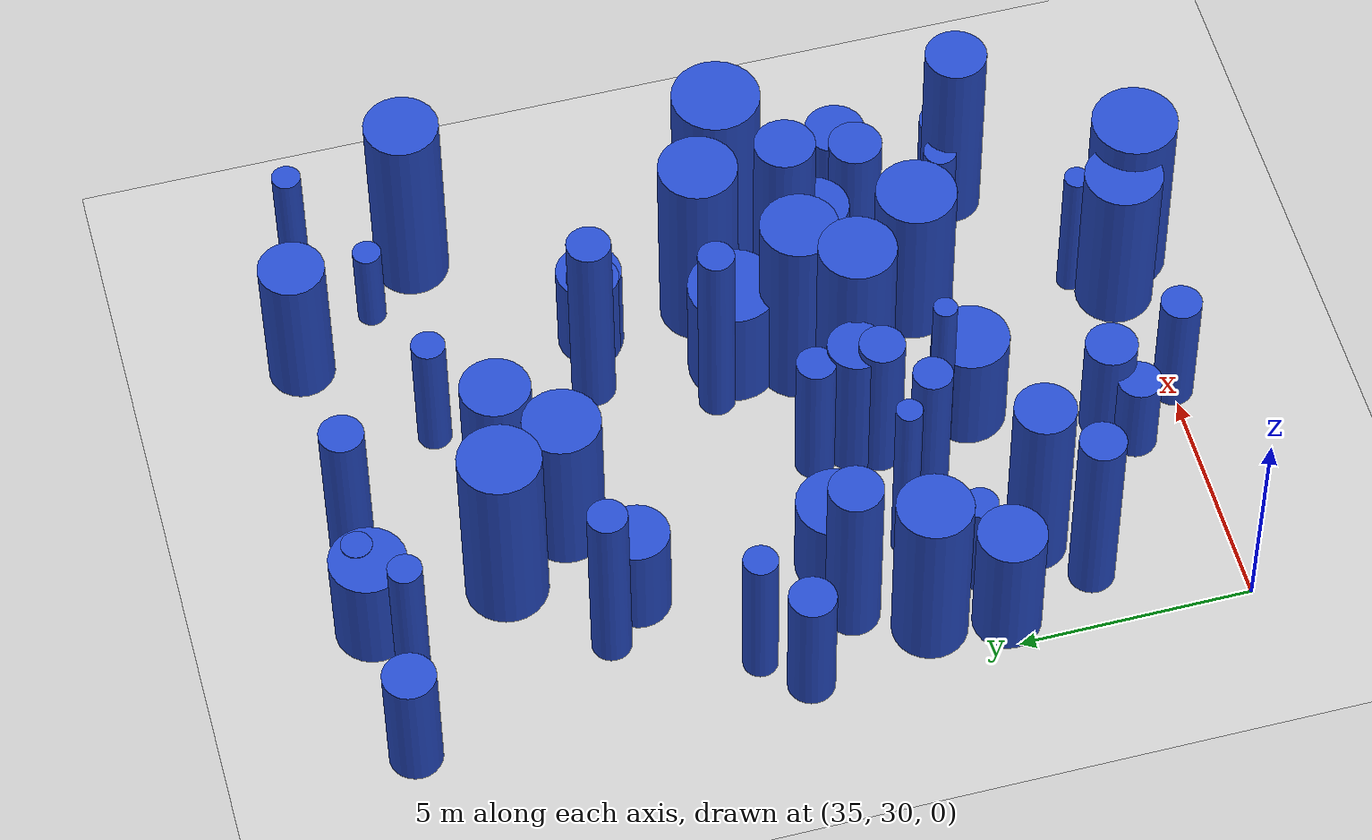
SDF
<sdf version="1.6">
 <world name="default">
  <model name="ground_plane">
   <static>1</static>
   <link name="link">
    <collision name="collision">
     <geometry><plane><normal>0 0 1</normal><size>100 100</size></plane></geometry>
     <surface><friction><ode><mu>100</mu><mu2>50</mu2></ode></friction></surface>
    </collision>
    <visual name="visual">
     <cast_shadows>0</cast_shadows>
     <geometry><plane><normal>0 0 1</normal><size>100 100</size></plane></geometry>
     <material>
      <script><uri>file://media/materials/scripts/gazebo.material</uri><name>Gazebo/Grey</name></script>
     </material>
    </visual>
   </link>
  </model>
  <model name="5">
   <static>0</static>
   <link name="link">
    <inertial>
     <mass>2</mass>
     <inertia><ixx>1.28365</ixx><ixy>0</ixy><ixz>0</ixz><iyy>1.28365</iyy><iyz>0</iyz><izz>0.136114</izz></inertia>
    </inertial>
    <collision name="collision">
     <geometry><cylinder><length>2.70066</length><radius>0.368937</radius></cylinder></geometry>
     <surface><contact><collide_without_contact>1</collide_without_contact></contact></surface>
    </collision>
    <visual name="visual">
     <geometry><cylinder><length>2.70066</length><radius>0.368937</radius></cylinder></geometry>
     <material>
      <script><uri>file://media/materials/scripts/gazebo.material</uri><name>Gazebo/Blue</name></script>
     </material>
    </visual>
    <gravity>0</gravity>
   </link>
   <pose>44.2189 36.454 1.35033 0 -0 0</pose>
  </model>
  <model name="10">
   <static>0</static>
   <link name="link">
    <inertial>
     <mass>2</mass>
     <inertia><ixx>1.16641</ixx><ixy>0</ixy><ixz>0</ixz><iyy>1.16641</iyy><iyz>0</iyz><izz>0.142317</izz></inertia>
    </inertial>
    <collision name="collision">
     <geometry><cylinder><length>2.56349</length><radius>0.37725</radius></cylinder></geometry>
     <surface><contact><collide_without_contact>1</collide_without_contact></contact></surface>
    </collision>
    <visual name="visual">
     <geometry><cylinder><length>2.56349</length><radius>0.37725</radius></cylinder></geometry>
     <material>
      <script><uri>file://media/materials/scripts/gazebo.material</uri><name>Gazebo/Blue</name></script>
     </material>
    </visual>
    <gravity>0</gravity>
   </link>
   <pose>36.8922 35.3674 1.28175 0 -0 0</pose>
  </model>
  <model name="12">
   <static>0</static>
   <link name="link">
    <inertial>
     <mass>2</mass>
     <inertia><ixx>2.99946</ixx><ixy>0</ixy><ixz>0</ixz><iyy>2.99946</iyy><iyz>0</iyz><izz>0.69692</izz></inertia>
    </inertial>
    <collision name="collision">
     <geometry><cylinder><length>3.98823</length><radius>0.834817</radius></cylinder></geometry>
     <surface><contact><collide_without_contact>1</collide_without_contact></contact></surface>
    </collision>
    <visual name="visual">
     <geometry><cylinder><length>3.98823</length><radius>0.834817</radius></cylinder></geometry>
     <material>
      <script><uri>file://media/materials/scripts/gazebo.material</uri><name>Gazebo/Blue</name></script>
     </material>
    </visual>
    <gravity>0</gravity>
   </link>
   <pose>43.2297 30.4 1.99412 0 -0 0</pose>
  </model>
  <model name="14">
   <static>0</static>
   <link name="link">
    <inertial>
     <mass>2</mass>
     <inertia>
      <ixx>2.88721</ixx>
      <ixy>0</ixy>
      <ixz>0</ixz>
      <iyy>2.88721</iyy>
      <iyz>0</iyz>
      <izz>0.0931527</izz>
     </inertia>
    </inertial>
    <collision name="collision">
     <geometry><cylinder><length>4.12841</length><radius>0.305209</radius></cylinder></geometry>
     <surface><contact><collide_without_contact>1</collide_without_contact></contact></surface>
    </collision>
    <visual name="visual">
     <geometry><cylinder><length>4.12841</length><radius>0.305209</radius></cylinder></geometry>
     <material>
      <script><uri>file://media/materials/scripts/gazebo.material</uri><name>Gazebo/Blue</name></script>
     </material>
    </visual>
    <gravity>0</gravity>
   </link>
   <pose>47.5968 47.3639 2.06421 0 -0 0</pose>
  </model>
  <model name="19">
   <static>0</static>
   <link name="link">
    <inertial>
     <mass>2</mass>
     <inertia><ixx>1.64625</ixx><ixy>0</ixy><ixz>0</ixz><iyy>1.64625</iyy><iyz>0</iyz><izz>0.417403</izz></inertia>
    </inertial>
    <collision name="collision">
     <geometry><cylinder><length>2.93689</length><radius>0.646067</radius></cylinder></geometry>
     <surface><contact><collide_without_contact>1</collide_without_contact></contact></surface>
    </collision>
    <visual name="visual">
     <geometry><cylinder><length>2.93689</length><radius>0.646067</radius></cylinder></geometry>
     <material>
      <script><uri>file://media/materials/scripts/gazebo.material</uri><name>Gazebo/Blue</name></script>
     </material>
    </visual>
    <gravity>0</gravity>
   </link>
   <pose>46.8519 35.6651 1.46844 0 -0 0</pose>
  </model>
  <model name="31">
   <static>0</static>
   <link name="link">
    <inertial>
     <mass>2</mass>
     <inertia><ixx>2.45644</ixx><ixy>0</ixy><ixz>0</ixz><iyy>2.45644</iyy><iyz>0</iyz><izz>0.235516</izz></inertia>
    </inertial>
    <collision name="collision">
     <geometry><cylinder><length>3.74595</length><radius>0.4853</radius></cylinder></geometry>
     <surface><contact><collide_without_contact>1</collide_without_contact></contact></surface>
    </collision>
    <visual name="visual">
     <geometry><cylinder><length>3.74595</length><radius>0.4853</radius></cylinder></geometry>
     <material>
      <script><uri>file://media/materials/scripts/gazebo.material</uri><name>Gazebo/Blue</name></script>
     </material>
    </visual>
    <gravity>0</gravity>
   </link>
   <pose>40.4344 36.4539 1.87297 0 -0 0</pose>
  </model>
  <model name="39">
   <static>0</static>
   <link name="link">
    <inertial>
     <mass>2</mass>
     <inertia><ixx>3.67581</ixx><ixy>0</ixy><ixz>0</ixz><iyy>3.67581</iyy><iyz>0</iyz><izz>0.237626</izz></inertia>
    </inertial>
    <collision name="collision">
     <geometry><cylinder><length>4.61974</length><radius>0.487469</radius></cylinder></geometry>
     <surface><contact><collide_without_contact>1</collide_without_contact></contact></surface>
    </collision>
    <visual name="visual">
     <geometry><cylinder><length>4.61974</length><radius>0.487469</radius></cylinder></geometry>
     <material>
      <script><uri>file://media/materials/scripts/gazebo.material</uri><name>Gazebo/Blue</name></script>
     </material>
    </visual>
    <gravity>0</gravity>
   </link>
   <pose>36.3072 33.0621 2.30987 0 -0 0</pose>
  </model>
  <model name="43">
   <static>0</static>
   <link name="link">
    <inertial>
     <mass>2</mass>
     <inertia><ixx>1.55938</ixx><ixy>0</ixy><ixz>0</ixz><iyy>1.55938</iyy><iyz>0</iyz><izz>0.307875</izz></inertia>
    </inertial>
    <collision name="collision">
     <geometry><cylinder><length>2.9039</length><radius>0.554865</radius></cylinder></geometry>
     <surface><contact><collide_without_contact>1</collide_without_contact></contact></surface>
    </collision>
    <visual name="visual">
     <geometry><cylinder><length>2.9039</length><radius>0.554865</radius></cylinder></geometry>
     <material>
      <script><uri>file://media/materials/scripts/gazebo.material</uri><name>Gazebo/Blue</name></script>
     </material>
    </visual>
    <gravity>0</gravity>
   </link>
   <pose>35.5678 47.5327 1.45195 0 -0 0</pose>
  </model>
  <model name="61">
   <static>0</static>
   <link name="link">
    <inertial>
     <mass>2</mass>
     <inertia><ixx>2.0788</ixx><ixy>0</ixy><ixz>0</ixz><iyy>2.0788</iyy><iyz>0</iyz><izz>0.0753611</izz></inertia>
    </inertial>
    <collision name="collision">
     <geometry><cylinder><length>3.49953</length><radius>0.27452</radius></cylinder></geometry>
     <surface><contact><collide_without_contact>1</collide_without_contact></contact></surface>
    </collision>
    <visual name="visual">
     <geometry><cylinder><length>3.49953</length><radius>0.27452</radius></cylinder></geometry>
     <material>
      <script><uri>file://media/materials/scripts/gazebo.material</uri><name>Gazebo/Blue</name></script>
     </material>
    </visual>
    <gravity>0</gravity>
   </link>
   <pose>43.7905 31.2281 1.74976 0 -0 0</pose>
  </model>
  <model name="64">
   <static>0</static>
   <link name="link">
    <inertial>
     <mass>2</mass>
     <inertia><ixx>2.07915</ixx><ixy>0</ixy><ixz>0</ixz><iyy>2.07915</iyy><iyz>0</iyz><izz>0.175917</izz></inertia>
    </inertial>
    <collision name="collision">
     <geometry><cylinder><length>3.45646</length><radius>0.419424</radius></cylinder></geometry>
     <surface><contact><collide_without_contact>1</collide_without_contact></contact></surface>
    </collision>
    <visual name="visual">
     <geometry><cylinder><length>3.45646</length><radius>0.419424</radius></cylinder></geometry>
     <material>
      <script><uri>file://media/materials/scripts/gazebo.material</uri><name>Gazebo/Blue</name></script>
     </material>
    </visual>
    <gravity>0</gravity>
   </link>
   <pose>40.5268 37.8266 1.72823 0 -0 0</pose>
  </model>
  <model name="96">
   <static>0</static>
   <link name="link">
    <inertial>
     <mass>2</mass>
     <inertia><ixx>2.76974</ixx><ixy>0</ixy><ixz>0</ixz><iyy>2.76974</iyy><iyz>0</iyz><izz>0.675124</izz></inertia>
    </inertial>
    <collision name="collision">
     <geometry><cylinder><length>3.82009</length><radius>0.82166</radius></cylinder></geometry>
     <surface><contact><collide_without_contact>1</collide_without_contact></contact></surface>
    </collision>
    <visual name="visual">
     <geometry><cylinder><length>3.82009</length><radius>0.82166</radius></cylinder></geometry>
     <material>
      <script><uri>file://media/materials/scripts/gazebo.material</uri><name>Gazebo/Blue</name></script>
     </material>
    </visual>
    <gravity>0</gravity>
   </link>
   <pose>40.1807 43.2774 1.91004 0 -0 0</pose>
  </model>
  <model name="98">
   <static>0</static>
   <link name="link">
    <inertial>
     <mass>2</mass>
     <inertia><ixx>1.71522</ixx><ixy>0</ixy><ixz>0</ixz><iyy>1.71522</iyy><iyz>0</iyz><izz>0.943107</izz></inertia>
    </inertial>
    <collision name="collision">
     <geometry><cylinder><length>2.73166</length><radius>0.971137</radius></cylinder></geometry>
     <surface><contact><collide_without_contact>1</collide_without_contact></contact></surface>
    </collision>
    <visual name="visual">
     <geometry><cylinder><length>2.73166</length><radius>0.971137</radius></cylinder></geometry>
     <material>
      <script><uri>file://media/materials/scripts/gazebo.material</uri><name>Gazebo/Blue</name></script>
     </material>
    </visual>
    <gravity>0</gravity>
   </link>
   <pose>43.4595 38.8044 1.36583 0 -0 0</pose>
  </model>
  <model name="109">
   <static>0</static>
   <link name="link">
    <inertial>
     <mass>2</mass>
     <inertia><ixx>1.09775</ixx><ixy>0</ixy><ixz>0</ixz><iyy>1.09775</iyy><iyz>0</iyz><izz>0.108231</izz></inertia>
    </inertial>
    <collision name="collision">
     <geometry><cylinder><length>2.50236</length><radius>0.328985</radius></cylinder></geometry>
     <surface><contact><collide_without_contact>1</collide_without_contact></contact></surface>
    </collision>
    <visual name="visual">
     <geometry><cylinder><length>2.50236</length><radius>0.328985</radius></cylinder></geometry>
     <material>
      <script><uri>file://media/materials/scripts/gazebo.material</uri><name>Gazebo/Blue</name></script>
     </material>
    </visual>
    <gravity>0</gravity>
   </link>
   <pose>39.2089 47.8125 1.25118 0 -0 0</pose>
  </model>
  <model name="110">
   <static>0</static>
   <link name="link">
    <inertial>
     <mass>2</mass>
     <inertia><ixx>0.82904</ixx><ixy>0</ixy><ixz>0</ixz><iyy>0.82904</iyy><iyz>0</iyz><izz>0.220253</izz></inertia>
    </inertial>
    <collision name="collision">
     <geometry><cylinder><length>2.07689</length><radius>0.469311</radius></cylinder></geometry>
     <surface><contact><collide_without_contact>1</collide_without_contact></contact></surface>
    </collision>
    <visual name="visual">
     <geometry><cylinder><length>2.07689</length><radius>0.469311</radius></cylinder></geometry>
     <material>
      <script><uri>file://media/materials/scripts/gazebo.material</uri><name>Gazebo/Blue</name></script>
     </material>
    </visual>
    <gravity>0</gravity>
   </link>
   <pose>39.37 31.1547 1.03845 0 -0 0</pose>
  </model>
  <model name="112">
   <static>0</static>
   <link name="link">
    <inertial>
     <mass>2</mass>
     <inertia><ixx>3.3324</ixx><ixy>0</ixy><ixz>0</ixz><iyy>3.3324</iyy><iyz>0</iyz><izz>0.327172</izz></inertia>
    </inertial>
    <collision name="collision">
     <geometry><cylinder><length>4.36038</length><radius>0.571989</radius></cylinder></geometry>
     <surface><contact><collide_without_contact>1</collide_without_contact></contact></surface>
    </collision>
    <visual name="visual">
     <geometry><cylinder><length>4.36038</length><radius>0.571989</radius></cylinder></geometry>
     <material>
      <script><uri>file://media/materials/scripts/gazebo.material</uri><name>Gazebo/Blue</name></script>
     </material>
    </visual>
    <gravity>0</gravity>
   </link>
   <pose>36.6463 38.0929 2.18019 0 -0 0</pose>
  </model>
  <model name="114">
   <static>0</static>
   <link name="link">
    <inertial>
     <mass>2</mass>
     <inertia>
      <ixx>0.804192</ixx>
      <ixy>0</ixy>
      <ixz>0</ixz>
      <iyy>0.804192</iyy>
      <iyz>0</iyz>
      <izz>0.0938016</izz>
     </inertia>
    </inertial>
    <collision name="collision">
     <geometry><cylinder><length>2.13161</length><radius>0.30627</radius></cylinder></geometry>
     <surface><contact><collide_without_contact>1</collide_without_contact></contact></surface>
    </collision>
    <visual name="visual">
     <geometry><cylinder><length>2.13161</length><radius>0.30627</radius></cylinder></geometry>
     <material>
      <script><uri>file://media/materials/scripts/gazebo.material</uri><name>Gazebo/Blue</name></script>
     </material>
    </visual>
    <gravity>0</gravity>
   </link>
   <pose>46.7886 45.9426 1.0658 0 -0 0</pose>
  </model>
  <model name="115">
   <static>0</static>
   <link name="link">
    <inertial>
     <mass>2</mass>
     <inertia><ixx>2.28306</ixx><ixy>0</ixy><ixz>0</ixz><iyy>2.28306</iyy><iyz>0</iyz><izz>0.38565</izz></inertia>
    </inertial>
    <collision name="collision">
     <geometry><cylinder><length>3.54139</length><radius>0.621007</radius></cylinder></geometry>
     <surface><contact><collide_without_contact>1</collide_without_contact></contact></surface>
    </collision>
    <visual name="visual">
     <geometry><cylinder><length>3.54139</length><radius>0.621007</radius></cylinder></geometry>
     <material>
      <script><uri>file://media/materials/scripts/gazebo.material</uri><name>Gazebo/Blue</name></script>
     </material>
    </visual>
    <gravity>0</gravity>
   </link>
   <pose>40.69 36.9177 1.77069 0 -0 0</pose>
  </model>
  <model name="120">
   <static>0</static>
   <link name="link">
    <inertial>
     <mass>2</mass>
     <inertia><ixx>2.29085</ixx><ixy>0</ixy><ixz>0</ixz><iyy>2.29085</iyy><iyz>0</iyz><izz>0.499718</izz></inertia>
    </inertial>
    <collision name="collision">
     <geometry><cylinder><length>3.49942</length><radius>0.706907</radius></cylinder></geometry>
     <surface><contact><collide_without_contact>1</collide_without_contact></contact></surface>
    </collision>
    <visual name="visual">
     <geometry><cylinder><length>3.49942</length><radius>0.706907</radius></cylinder></geometry>
     <material>
      <script><uri>file://media/materials/scripts/gazebo.material</uri><name>Gazebo/Blue</name></script>
     </material>
    </visual>
    <gravity>0</gravity>
   </link>
   <pose>45.7009 47.7071 1.74971 0 -0 0</pose>
  </model>
  <model name="127">
   <static>0</static>
   <link name="link">
    <inertial>
     <mass>2</mass>
     <inertia><ixx>1.60144</ixx><ixy>0</ixy><ixz>0</ixz><iyy>1.60144</iyy><iyz>0</iyz><izz>0.190885</izz></inertia>
    </inertial>
    <collision name="collision">
     <geometry><cylinder><length>3.006</length><radius>0.436904</radius></cylinder></geometry>
     <surface><contact><collide_without_contact>1</collide_without_contact></contact></surface>
    </collision>
    <visual name="visual">
     <geometry><cylinder><length>3.006</length><radius>0.436904</radius></cylinder></geometry>
     <material>
      <script><uri>file://media/materials/scripts/gazebo.material</uri><name>Gazebo/Blue</name></script>
     </material>
    </visual>
    <gravity>0</gravity>
   </link>
   <pose>40.4164 29.9772 1.503 0 -0 0</pose>
  </model>
  <model name="132">
   <static>0</static>
   <link name="link">
    <inertial>
     <mass>2</mass>
     <inertia><ixx>1.09269</ixx><ixy>0</ixy><ixz>0</ixz><iyy>1.09269</iyy><iyz>0</iyz><izz>0.31635</izz></inertia>
    </inertial>
    <collision name="collision">
     <geometry><cylinder><length>2.36792</length><radius>0.56245</radius></cylinder></geometry>
     <surface><contact><collide_without_contact>1</collide_without_contact></contact></surface>
    </collision>
    <visual name="visual">
     <geometry><cylinder><length>2.36792</length><radius>0.56245</radius></cylinder></geometry>
     <material>
      <script><uri>file://media/materials/scripts/gazebo.material</uri><name>Gazebo/Blue</name></script>
     </material>
    </visual>
    <gravity>0</gravity>
   </link>
   <pose>44.7317 41.5307 1.18396 0 -0 0</pose>
  </model>
  <model name="134">
   <static>0</static>
   <link name="link">
    <inertial>
     <mass>2</mass>
     <inertia><ixx>2.40545</ixx><ixy>0</ixy><ixz>0</ixz><iyy>2.40545</iyy><iyz>0</iyz><izz>0.554931</izz></inertia>
    </inertial>
    <collision name="collision">
     <geometry><cylinder><length>3.57322</length><radius>0.744937</radius></cylinder></geometry>
     <surface><contact><collide_without_contact>1</collide_without_contact></contact></surface>
    </collision>
    <visual name="visual">
     <geometry><cylinder><length>3.57322</length><radius>0.744937</radius></cylinder></geometry>
     <material>
      <script><uri>file://media/materials/scripts/gazebo.material</uri><name>Gazebo/Blue</name></script>
     </material>
    </visual>
    <gravity>0</gravity>
   </link>
   <pose>41.548 44.3428 1.78661 0 -0 0</pose>
  </model>
  <model name="135">
   <static>0</static>
   <link name="link">
    <inertial>
     <mass>2</mass>
     <inertia><ixx>3.93366</ixx><ixy>0</ixy><ixz>0</ixz><iyy>3.93366</iyy><iyz>0</iyz><izz>0.417989</izz></inertia>
    </inertial>
    <collision name="collision">
     <geometry><cylinder><length>4.72736</length><radius>0.646521</radius></cylinder></geometry>
     <surface><contact><collide_without_contact>1</collide_without_contact></contact></surface>
    </collision>
    <visual name="visual">
     <geometry><cylinder><length>4.72736</length><radius>0.646521</radius></cylinder></geometry>
     <material>
      <script><uri>file://media/materials/scripts/gazebo.material</uri><name>Gazebo/Blue</name></script>
     </material>
    </visual>
    <gravity>0</gravity>
   </link>
   <pose>37.3067 33.9645 2.36368 0 -0 0</pose>
  </model>
  <model name="140">
   <static>0</static>
   <link name="link">
    <inertial>
     <mass>2</mass>
     <inertia><ixx>1.35779</ixx><ixy>0</ixy><ixz>0</ixz><iyy>1.35779</iyy><iyz>0</iyz><izz>0.659394</izz></inertia>
    </inertial>
    <collision name="collision">
     <geometry><cylinder><length>2.48366</length><radius>0.812031</radius></cylinder></geometry>
     <surface><contact><collide_without_contact>1</collide_without_contact></contact></surface>
    </collision>
    <visual name="visual">
     <geometry><cylinder><length>2.48366</length><radius>0.812031</radius></cylinder></geometry>
     <material>
      <script><uri>file://media/materials/scripts/gazebo.material</uri><name>Gazebo/Blue</name></script>
     </material>
    </visual>
    <gravity>0</gravity>
   </link>
   <pose>38.7944 47.6769 1.24183 0 -0 0</pose>
  </model>
  <model name="165">
   <static>0</static>
   <link name="link">
    <inertial>
     <mass>2</mass>
     <inertia>
      <ixx>0.994153</ixx>
      <ixy>0</ixy>
      <ixz>0</ixz>
      <iyy>0.994153</iyy>
      <iyz>0</iyz>
      <izz>0.126673</izz>
     </inertia>
    </inertial>
    <collision name="collision">
     <geometry><cylinder><length>2.36324</length><radius>0.355912</radius></cylinder></geometry>
     <surface><contact><collide_without_contact>1</collide_without_contact></contact></surface>
    </collision>
    <visual name="visual">
     <geometry><cylinder><length>2.36324</length><radius>0.355912</radius></cylinder></geometry>
     <material>
      <script><uri>file://media/materials/scripts/gazebo.material</uri><name>Gazebo/Blue</name></script>
     </material>
    </visual>
    <gravity>0</gravity>
   </link>
   <pose>46.1058 33.5172 1.18162 0 -0 0</pose>
  </model>
  <model name="169">
   <static>0</static>
   <link name="link">
    <inertial>
     <mass>2</mass>
     <inertia><ixx>2.0307</ixx><ixy>0</ixy><ixz>0</ixz><iyy>2.0307</iyy><iyz>0</iyz><izz>0.177895</izz></inertia>
    </inertial>
    <collision name="collision">
     <geometry><cylinder><length>3.41328</length><radius>0.421776</radius></cylinder></geometry>
     <surface><contact><collide_without_contact>1</collide_without_contact></contact></surface>
    </collision>
    <visual name="visual">
     <geometry><cylinder><length>3.41328</length><radius>0.421776</radius></cylinder></geometry>
     <material>
      <script><uri>file://media/materials/scripts/gazebo.material</uri><name>Gazebo/Blue</name></script>
     </material>
    </visual>
    <gravity>0</gravity>
   </link>
   <pose>39.6887 35.5802 1.70664 0 -0 0</pose>
  </model>
  <model name="173">
   <static>0</static>
   <link name="link">
    <inertial>
     <mass>2</mass>
     <inertia><ixx>4.09562</ixx><ixy>0</ixy><ixz>0</ixz><iyy>4.09562</iyy><iyz>0</iyz><izz>0.435234</izz></inertia>
    </inertial>
    <collision name="collision">
     <geometry><cylinder><length>4.82369</length><radius>0.659723</radius></cylinder></geometry>
     <surface><contact><collide_without_contact>1</collide_without_contact></contact></surface>
    </collision>
    <visual name="visual">
     <geometry><cylinder><length>4.82369</length><radius>0.659723</radius></cylinder></geometry>
     <material>
      <script><uri>file://media/materials/scripts/gazebo.material</uri><name>Gazebo/Blue</name></script>
     </material>
    </visual>
    <gravity>0</gravity>
   </link>
   <pose>46.6262 33.0929 2.41185 0 -0 0</pose>
  </model>
  <model name="183">
   <static>0</static>
   <link name="link">
    <inertial>
     <mass>2</mass>
     <inertia><ixx>1.23998</ixx><ixy>0</ixy><ixz>0</ixz><iyy>1.23998</iyy><iyz>0</iyz><izz>0.606635</izz></inertia>
    </inertial>
    <collision name="collision">
     <geometry><cylinder><length>2.37065</length><radius>0.778868</radius></cylinder></geometry>
     <surface><contact><collide_without_contact>1</collide_without_contact></contact></surface>
    </collision>
    <visual name="visual">
     <geometry><cylinder><length>2.37065</length><radius>0.778868</radius></cylinder></geometry>
     <material>
      <script><uri>file://media/materials/scripts/gazebo.material</uri><name>Gazebo/Blue</name></script>
     </material>
    </visual>
    <gravity>0</gravity>
   </link>
   <pose>45.3782 36.5454 1.18533 0 -0 0</pose>
  </model>
  <model name="206">
   <static>0</static>
   <link name="link">
    <inertial>
     <mass>2</mass>
     <inertia><ixx>4.20678</ixx><ixy>0</ixy><ixz>0</ixz><iyy>4.20678</iyy><iyz>0</iyz><izz>0.687476</izz></inertia>
    </inertial>
    <collision name="collision">
     <geometry><cylinder><length>4.81438</length><radius>0.829142</radius></cylinder></geometry>
     <surface><contact><collide_without_contact>1</collide_without_contact></contact></surface>
    </collision>
    <visual name="visual">
     <geometry><cylinder><length>4.81438</length><radius>0.829142</radius></cylinder></geometry>
     <material>
      <script><uri>file://media/materials/scripts/gazebo.material</uri><name>Gazebo/Blue</name></script>
     </material>
    </visual>
    <gravity>0</gravity>
   </link>
   <pose>43.0562 37.5033 2.40719 0 -0 0</pose>
  </model>
  <model name="208">
   <static>0</static>
   <link name="link">
    <inertial>
     <mass>2</mass>
     <inertia><ixx>1.47433</ixx><ixy>0</ixy><ixz>0</ixz><iyy>1.47433</iyy><iyz>0</iyz><izz>0.681332</izz></inertia>
    </inertial>
    <collision name="collision">
     <geometry><cylinder><length>2.60806</length><radius>0.825429</radius></cylinder></geometry>
     <surface><contact><collide_without_contact>1</collide_without_contact></contact></surface>
    </collision>
    <visual name="visual">
     <geometry><cylinder><length>2.60806</length><radius>0.825429</radius></cylinder></geometry>
     <material>
      <script><uri>file://media/materials/scripts/gazebo.material</uri><name>Gazebo/Blue</name></script>
     </material>
    </visual>
    <gravity>0</gravity>
   </link>
   <pose>40.9695 34.3669 1.30403 0 -0 0</pose>
  </model>
  <model name="218">
   <static>0</static>
   <link name="link">
    <inertial>
     <mass>2</mass>
     <inertia><ixx>1.70712</ixx><ixy>0</ixy><ixz>0</ixz><iyy>1.70712</iyy><iyz>0</iyz><izz>0.130764</izz></inertia>
    </inertial>
    <collision name="collision">
     <geometry><cylinder><length>3.13854</length><radius>0.361613</radius></cylinder></geometry>
     <surface><contact><collide_without_contact>1</collide_without_contact></contact></surface>
    </collision>
    <visual name="visual">
     <geometry><cylinder><length>3.13854</length><radius>0.361613</radius></cylinder></geometry>
     <material>
      <script><uri>file://media/materials/scripts/gazebo.material</uri><name>Gazebo/Blue</name></script>
     </material>
    </visual>
    <gravity>0</gravity>
   </link>
   <pose>43.2841 45.3669 1.56927 0 -0 0</pose>
  </model>
  <model name="258">
   <static>0</static>
   <link name="link">
    <inertial>
     <mass>2</mass>
     <inertia><ixx>1.73007</ixx><ixy>0</ixy><ixz>0</ixz><iyy>1.73007</iyy><iyz>0</iyz><izz>0.245088</izz></inertia>
    </inertial>
    <collision name="collision">
     <geometry><cylinder><length>3.10567</length><radius>0.495063</radius></cylinder></geometry>
     <surface><contact><collide_without_contact>1</collide_without_contact></contact></surface>
    </collision>
    <visual name="visual">
     <geometry><cylinder><length>3.10567</length><radius>0.495063</radius></cylinder></geometry>
     <material>
      <script><uri>file://media/materials/scripts/gazebo.material</uri><name>Gazebo/Blue</name></script>
     </material>
    </visual>
    <gravity>0</gravity>
   </link>
   <pose>35.1834 39.3774 1.55283 0 -0 0</pose>
  </model>
  <model name="266">
   <static>0</static>
   <link name="link">
    <inertial>
     <mass>2</mass>
     <inertia><ixx>4.49575</ixx><ixy>0</ixy><ixz>0</ixz><iyy>4.49575</iyy><iyz>0</iyz><izz>0.676822</izz></inertia>
    </inertial>
    <collision name="collision">
     <geometry><cylinder><length>4.9944</length><radius>0.822692</radius></cylinder></geometry>
     <surface><contact><collide_without_contact>1</collide_without_contact></contact></surface>
    </collision>
    <visual name="visual">
     <geometry><cylinder><length>4.9944</length><radius>0.822692</radius></cylinder></geometry>
     <material>
      <script><uri>file://media/materials/scripts/gazebo.material</uri><name>Gazebo/Blue</name></script>
     </material>
    </visual>
    <gravity>0</gravity>
   </link>
   <pose>42.0422 36.5466 2.4972 0 -0 0</pose>
  </model>
  <model name="267">
   <static>0</static>
   <link name="link">
    <inertial>
     <mass>2</mass>
     <inertia><ixx>2.92981</ixx><ixy>0</ixy><ixz>0</ixz><iyy>2.92981</iyy><iyz>0</iyz><izz>0.740889</izz></inertia>
    </inertial>
    <collision name="collision">
     <geometry><cylinder><length>3.9187</length><radius>0.860749</radius></cylinder></geometry>
     <surface><contact><collide_without_contact>1</collide_without_contact></contact></surface>
    </collision>
    <visual name="visual">
     <geometry><cylinder><length>3.9187</length><radius>0.860749</radius></cylinder></geometry>
     <material>
      <script><uri>file://media/materials/scripts/gazebo.material</uri><name>Gazebo/Blue</name></script>
     </material>
    </visual>
    <gravity>0</gravity>
   </link>
   <pose>43.9752 34.7066 1.95935 0 -0 0</pose>
  </model>
  <model name="283">
   <static>0</static>
   <link name="link">
    <inertial>
     <mass>2</mass>
     <inertia><ixx>3.98726</ixx><ixy>0</ixy><ixz>0</ixz><iyy>3.98726</iyy><iyz>0</iyz><izz>0.635827</izz></inertia>
    </inertial>
    <collision name="collision">
     <geometry><cylinder><length>4.69213</length><radius>0.797388</radius></cylinder></geometry>
     <surface><contact><collide_without_contact>1</collide_without_contact></contact></surface>
    </collision>
    <visual name="visual">
     <geometry><cylinder><length>4.69213</length><radius>0.797388</radius></cylinder></geometry>
     <material>
      <script><uri>file://media/materials/scripts/gazebo.material</uri><name>Gazebo/Blue</name></script>
     </material>
    </visual>
    <gravity>0</gravity>
   </link>
   <pose>47.8674 44.8192 2.34606 0 -0 0</pose>
  </model>
  <model name="288">
   <static>0</static>
   <link name="link">
    <inertial>
     <mass>2</mass>
     <inertia><ixx>3.47202</ixx><ixy>0</ixy><ixz>0</ixz><iyy>3.47202</iyy><iyz>0</iyz><izz>0.174667</izz></inertia>
    </inertial>
    <collision name="collision">
     <geometry><cylinder><length>4.50645</length><radius>0.417932</radius></cylinder></geometry>
     <surface><contact><collide_without_contact>1</collide_without_contact></contact></surface>
    </collision>
    <visual name="visual">
     <geometry><cylinder><length>4.50645</length><radius>0.417932</radius></cylinder></geometry>
     <material>
      <script><uri>file://media/materials/scripts/gazebo.material</uri><name>Gazebo/Blue</name></script>
     </material>
    </visual>
    <gravity>0</gravity>
   </link>
   <pose>37.1809 43.0605 2.25323 0 -0 0</pose>
  </model>
  <model name="309">
   <static>0</static>
   <link name="link">
    <inertial>
     <mass>2</mass>
     <inertia><ixx>1.09079</ixx><ixy>0</ixy><ixz>0</ixz><iyy>1.09079</iyy><iyz>0</iyz><izz>0.36606</izz></inertia>
    </inertial>
    <collision name="collision">
     <geometry><cylinder><length>2.33379</length><radius>0.605029</radius></cylinder></geometry>
     <surface><contact><collide_without_contact>1</collide_without_contact></contact></surface>
    </collision>
    <visual name="visual">
     <geometry><cylinder><length>2.33379</length><radius>0.605029</radius></cylinder></geometry>
     <material>
      <script><uri>file://media/materials/scripts/gazebo.material</uri><name>Gazebo/Blue</name></script>
     </material>
    </visual>
    <gravity>0</gravity>
   </link>
   <pose>46.9109 33.1233 1.16689 0 -0 0</pose>
  </model>
  <model name="325">
   <static>0</static>
   <link name="link">
    <inertial>
     <mass>2</mass>
     <inertia><ixx>3.89424</ixx><ixy>0</ixy><ixz>0</ixz><iyy>3.89424</iyy><iyz>0</iyz><izz>0.834516</izz></inertia>
    </inertial>
    <collision name="collision">
     <geometry><cylinder><length>4.56748</length><radius>0.913519</radius></cylinder></geometry>
     <surface><contact><collide_without_contact>1</collide_without_contact></contact></surface>
    </collision>
    <visual name="visual">
     <geometry><cylinder><length>4.56748</length><radius>0.913519</radius></cylinder></geometry>
     <material>
      <script><uri>file://media/materials/scripts/gazebo.material</uri><name>Gazebo/Blue</name></script>
     </material>
    </visual>
    <gravity>0</gravity>
   </link>
   <pose>44.1191 29.9154 2.28374 0 -0 0</pose>
  </model>
  <model name="350">
   <static>0</static>
   <link name="link">
    <inertial>
     <mass>2</mass>
     <inertia><ixx>1.7116</ixx><ixy>0</ixy><ixz>0</ixz><iyy>1.7116</iyy><iyz>0</iyz><izz>0.335169</izz></inertia>
    </inertial>
    <collision name="collision">
     <geometry><cylinder><length>3.0437</length><radius>0.578938</radius></cylinder></geometry>
     <surface><contact><collide_without_contact>1</collide_without_contact></contact></surface>
    </collision>
    <visual name="visual">
     <geometry><cylinder><length>3.0437</length><radius>0.578938</radius></cylinder></geometry>
     <material>
      <script><uri>file://media/materials/scripts/gazebo.material</uri><name>Gazebo/Blue</name></script>
     </material>
    </visual>
    <gravity>0</gravity>
   </link>
   <pose>46.2697 35.3737 1.52185 0 -0 0</pose>
  </model>
  <model name="352">
   <static>0</static>
   <link name="link">
    <inertial>
     <mass>2</mass>
     <inertia><ixx>3.19634</ixx><ixy>0</ixy><ixz>0</ixz><iyy>3.19634</iyy><iyz>0</iyz><izz>0.221575</izz></inertia>
    </inertial>
    <collision name="collision">
     <geometry><cylinder><length>4.30271</length><radius>0.470718</radius></cylinder></geometry>
     <surface><contact><collide_without_contact>1</collide_without_contact></contact></surface>
    </collision>
    <visual name="visual">
     <geometry><cylinder><length>4.30271</length><radius>0.470718</radius></cylinder></geometry>
     <material>
      <script><uri>file://media/materials/scripts/gazebo.material</uri><name>Gazebo/Blue</name></script>
     </material>
    </visual>
    <gravity>0</gravity>
   </link>
   <pose>40.6793 47.6928 2.15136 0 -0 0</pose>
  </model>
  <model name="358">
   <static>0</static>
   <link name="link">
    <inertial>
     <mass>2</mass>
     <inertia><ixx>1.16296</ixx><ixy>0</ixy><ixz>0</ixz><iyy>1.16296</iyy><iyz>0</iyz><izz>0.724806</izz></inertia>
    </inertial>
    <collision name="collision">
     <geometry><cylinder><length>2.19166</length><radius>0.851355</radius></cylinder></geometry>
     <surface><contact><collide_without_contact>1</collide_without_contact></contact></surface>
    </collision>
    <visual name="visual">
     <geometry><cylinder><length>2.19166</length><radius>0.851355</radius></cylinder></geometry>
     <material>
      <script><uri>file://media/materials/scripts/gazebo.material</uri><name>Gazebo/Blue</name></script>
     </material>
    </visual>
    <gravity>0</gravity>
   </link>
   <pose>37.9164 38.1057 1.09583 0 -0 0</pose>
  </model>
  <model name="363">
   <static>0</static>
   <link name="link">
    <inertial>
     <mass>2</mass>
     <inertia><ixx>2.26321</ixx><ixy>0</ixy><ixz>0</ixz><iyy>2.26321</iyy><iyz>0</iyz><izz>0.133048</izz></inertia>
    </inertial>
    <collision name="collision">
     <geometry><cylinder><length>3.63044</length><radius>0.364758</radius></cylinder></geometry>
     <surface><contact><collide_without_contact>1</collide_without_contact></contact></surface>
    </collision>
    <visual name="visual">
     <geometry><cylinder><length>3.63044</length><radius>0.364758</radius></cylinder></geometry>
     <material>
      <script><uri>file://media/materials/scripts/gazebo.material</uri><name>Gazebo/Blue</name></script>
     </material>
    </visual>
    <gravity>0</gravity>
   </link>
   <pose>35.9597 40.2422 1.81522 0 -0 0</pose>
  </model>
  <model name="371">
   <static>0</static>
   <link name="link">
    <inertial>
     <mass>2</mass>
     <inertia><ixx>3.32502</ixx><ixy>0</ixy><ixz>0</ixz><iyy>3.32502</iyy><iyz>0</iyz><izz>0.632117</izz></inertia>
    </inertial>
    <collision name="collision">
     <geometry><cylinder><length>4.24897</length><radius>0.795058</radius></cylinder></geometry>
     <surface><contact><collide_without_contact>1</collide_without_contact></contact></surface>
    </collision>
    <visual name="visual">
     <geometry><cylinder><length>4.24897</length><radius>0.795058</radius></cylinder></geometry>
     <material>
      <script><uri>file://media/materials/scripts/gazebo.material</uri><name>Gazebo/Blue</name></script>
     </material>
    </visual>
    <gravity>0</gravity>
   </link>
   <pose>35.9043 36.661 2.12449 0 -0 0</pose>
  </model>
  <model name="405">
   <static>0</static>
   <link name="link">
    <inertial>
     <mass>2</mass>
     <inertia><ixx>1.30005</ixx><ixy>0</ixy><ixz>0</ixz><iyy>1.30005</iyy><iyz>0</iyz><izz>0.144463</izz></inertia>
    </inertial>
    <collision name="collision">
     <geometry><cylinder><length>2.71421</length><radius>0.380082</radius></cylinder></geometry>
     <surface><contact><collide_without_contact>1</collide_without_contact></contact></surface>
    </collision>
    <visual name="visual">
     <geometry><cylinder><length>2.71421</length><radius>0.380082</radius></cylinder></geometry>
     <material>
      <script><uri>file://media/materials/scripts/gazebo.material</uri><name>Gazebo/Blue</name></script>
     </material>
    </visual>
    <gravity>0</gravity>
   </link>
   <pose>36.5413 36.1475 1.3571 0 -0 0</pose>
  </model>
  <model name="410">
   <static>0</static>
   <link name="link">
    <inertial>
     <mass>2</mass>
     <inertia>
      <ixx>3.64508</ixx>
      <ixy>0</ixy>
      <ixz>0</ixz>
      <iyy>3.64508</iyy>
      <iyz>0</iyz>
      <izz>0.0772008</izz>
     </inertia>
    </inertial>
    <collision name="collision">
     <geometry><cylinder><length>4.65176</length><radius>0.27785</radius></cylinder></geometry>
     <surface><contact><collide_without_contact>1</collide_without_contact></contact></surface>
    </collision>
    <visual name="visual">
     <geometry><cylinder><length>4.65176</length><radius>0.27785</radius></cylinder></geometry>
     <material>
      <script><uri>file://media/materials/scripts/gazebo.material</uri><name>Gazebo/Blue</name></script>
     </material>
    </visual>
    <gravity>0</gravity>
   </link>
   <pose>38.0342 36.5896 2.32588 0 -0 0</pose>
  </model>
  <model name="421">
   <static>0</static>
   <link name="link">
    <inertial>
     <mass>2</mass>
     <inertia><ixx>2.47581</ixx><ixy>0</ixy><ixz>0</ixz><iyy>2.47581</iyy><iyz>0</iyz><izz>0.128317</izz></inertia>
    </inertial>
    <collision name="collision">
     <geometry><cylinder><length>3.80393</length><radius>0.358214</radius></cylinder></geometry>
     <surface><contact><collide_without_contact>1</collide_without_contact></contact></surface>
    </collision>
    <visual name="visual">
     <geometry><cylinder><length>3.80393</length><radius>0.358214</radius></cylinder></geometry>
     <material>
      <script><uri>file://media/materials/scripts/gazebo.material</uri><name>Gazebo/Blue</name></script>
     </material>
    </visual>
    <gravity>0</gravity>
   </link>
   <pose>37.4734 47.1396 1.90197 0 -0 0</pose>
  </model>
  <model name="435">
   <static>0</static>
   <link name="link">
    <inertial>
     <mass>2</mass>
     <inertia><ixx>1.21323</ixx><ixy>0</ixy><ixz>0</ixz><iyy>1.21323</iyy><iyz>0</iyz><izz>0.470789</izz></inertia>
    </inertial>
    <collision name="collision">
     <geometry><cylinder><length>2.42219</length><radius>0.686141</radius></cylinder></geometry>
     <surface><contact><collide_without_contact>1</collide_without_contact></contact></surface>
    </collision>
    <visual name="visual">
     <geometry><cylinder><length>2.42219</length><radius>0.686141</radius></cylinder></geometry>
     <material>
      <script><uri>file://media/materials/scripts/gazebo.material</uri><name>Gazebo/Blue</name></script>
     </material>
    </visual>
    <gravity>0</gravity>
   </link>
   <pose>38.0861 42.2666 1.21109 0 -0 0</pose>
  </model>
  <model name="447">
   <static>0</static>
   <link name="link">
    <inertial>
     <mass>2</mass>
     <inertia><ixx>4.13232</ixx><ixy>0</ixy><ixz>0</ixz><iyy>4.13232</iyy><iyz>0</iyz><izz>0.218994</izz></inertia>
    </inertial>
    <collision name="collision">
     <geometry><cylinder><length>4.91294</length><radius>0.467967</radius></cylinder></geometry>
     <surface><contact><collide_without_contact>1</collide_without_contact></contact></surface>
    </collision>
    <visual name="visual">
     <geometry><cylinder><length>4.91294</length><radius>0.467967</radius></cylinder></geometry>
     <material>
      <script><uri>file://media/materials/scripts/gazebo.material</uri><name>Gazebo/Blue</name></script>
     </material>
    </visual>
    <gravity>0</gravity>
   </link>
   <pose>43.6164 41.8303 2.45647 0 -0 0</pose>
  </model>
  <model name="452">
   <static>0</static>
   <link name="link">
    <inertial>
     <mass>2</mass>
     <inertia><ixx>3.87339</ixx><ixy>0</ixy><ixz>0</ixz><iyy>3.87339</iyy><iyz>0</iyz><izz>0.422561</izz></inertia>
    </inertial>
    <collision name="collision">
     <geometry><cylinder><length>4.6875</length><radius>0.650047</radius></cylinder></geometry>
     <surface><contact><collide_without_contact>1</collide_without_contact></contact></surface>
    </collision>
    <visual name="visual">
     <geometry><cylinder><length>4.6875</length><radius>0.650047</radius></cylinder></geometry>
     <material>
      <script><uri>file://media/materials/scripts/gazebo.material</uri><name>Gazebo/Blue</name></script>
     </material>
    </visual>
    <gravity>0</gravity>
   </link>
   <pose>45.3301 37.1923 2.34375 0 -0 0</pose>
  </model>
  <model name="458">
   <static>0</static>
   <link name="link">
    <inertial>
     <mass>2</mass>
     <inertia><ixx>4.1543</ixx><ixy>0</ixy><ixz>0</ixz><iyy>4.1543</iyy><iyz>0</iyz><izz>0.892908</izz></inertia>
    </inertial>
    <collision name="collision">
     <geometry><cylinder><length>4.71668</length><radius>0.944938</radius></cylinder></geometry>
     <surface><contact><collide_without_contact>1</collide_without_contact></contact></surface>
    </collision>
    <visual name="visual">
     <geometry><cylinder><length>4.71668</length><radius>0.944938</radius></cylinder></geometry>
     <material>
      <script><uri>file://media/materials/scripts/gazebo.material</uri><name>Gazebo/Blue</name></script>
     </material>
    </visual>
    <gravity>0</gravity>
   </link>
   <pose>46.9407 38.2563 2.35834 0 -0 0</pose>
  </model>
  <model name="465">
   <static>0</static>
   <link name="link">
    <inertial>
     <mass>2</mass>
     <inertia><ixx>4.13116</ixx><ixy>0</ixy><ixz>0</ixz><iyy>4.13116</iyy><iyz>0</iyz><izz>0.150827</izz></inertia>
    </inertial>
    <collision name="collision">
     <geometry><cylinder><length>4.933</length><radius>0.388364</radius></cylinder></geometry>
     <surface><contact><collide_without_contact>1</collide_without_contact></contact></surface>
    </collision>
    <visual name="visual">
     <geometry><cylinder><length>4.933</length><radius>0.388364</radius></cylinder></geometry>
     <material>
      <script><uri>file://media/materials/scripts/gazebo.material</uri><name>Gazebo/Blue</name></script>
     </material>
    </visual>
    <gravity>0</gravity>
   </link>
   <pose>42.6284 39.3874 2.4665 0 -0 0</pose>
  </model>
  <model name="466">
   <static>0</static>
   <link name="link">
    <inertial>
     <mass>2</mass>
     <inertia><ixx>1.15281</ixx><ixy>0</ixy><ixz>0</ixz><iyy>1.15281</iyy><iyz>0</iyz><izz>0.490998</izz></inertia>
    </inertial>
    <collision name="collision">
     <geometry><cylinder><length>2.33321</length><radius>0.700712</radius></cylinder></geometry>
     <surface><contact><collide_without_contact>1</collide_without_contact></contact></surface>
    </collision>
    <visual name="visual">
     <geometry><cylinder><length>2.33321</length><radius>0.700712</radius></cylinder></geometry>
     <material>
      <script><uri>file://media/materials/scripts/gazebo.material</uri><name>Gazebo/Blue</name></script>
     </material>
    </visual>
    <gravity>0</gravity>
   </link>
   <pose>44.9239 41.5691 1.16661 0 -0 0</pose>
  </model>
  <model name="471">
   <static>0</static>
   <link name="link">
    <inertial>
     <mass>2</mass>
     <inertia><ixx>1.33019</ixx><ixy>0</ixy><ixz>0</ixz><iyy>1.33019</iyy><iyz>0</iyz><izz>0.309439</izz></inertia>
    </inertial>
    <collision name="collision">
     <geometry><cylinder><length>2.65572</length><radius>0.556272</radius></cylinder></geometry>
     <surface><contact><collide_without_contact>1</collide_without_contact></contact></surface>
    </collision>
    <visual name="visual">
     <geometry><cylinder><length>2.65572</length><radius>0.556272</radius></cylinder></geometry>
     <material>
      <script><uri>file://media/materials/scripts/gazebo.material</uri><name>Gazebo/Blue</name></script>
     </material>
    </visual>
    <gravity>0</gravity>
   </link>
   <pose>39.994 31.6107 1.32786 0 -0 0</pose>
  </model>
  <model name="472">
   <static>0</static>
   <link name="link">
    <inertial>
     <mass>2</mass>
     <inertia><ixx>3.73341</ixx><ixy>0</ixy><ixz>0</ixz><iyy>3.73341</iyy><iyz>0</iyz><izz>0.756382</izz></inertia>
    </inertial>
    <collision name="collision">
     <geometry><cylinder><length>4.4868</length><radius>0.869702</radius></cylinder></geometry>
     <surface><contact><collide_without_contact>1</collide_without_contact></contact></surface>
    </collision>
    <visual name="visual">
     <geometry><cylinder><length>4.4868</length><radius>0.869702</radius></cylinder></geometry>
     <material>
      <script><uri>file://media/materials/scripts/gazebo.material</uri><name>Gazebo/Blue</name></script>
     </material>
    </visual>
    <gravity>0</gravity>
   </link>
   <pose>39.1035 44.8022 2.2434 0 -0 0</pose>
  </model>
  <model name="477">
   <static>0</static>
   <link name="link">
    <inertial>
     <mass>2</mass>
     <inertia><ixx>1.82619</ixx><ixy>0</ixy><ixz>0</ixz><iyy>1.82619</iyy><iyz>0</iyz><izz>0.521051</izz></inertia>
    </inertial>
    <collision name="collision">
     <geometry><cylinder><length>3.06496</length><radius>0.721839</radius></cylinder></geometry>
     <surface><contact><collide_without_contact>1</collide_without_contact></contact></surface>
    </collision>
    <visual name="visual">
     <geometry><cylinder><length>3.06496</length><radius>0.721839</radius></cylinder></geometry>
     <material>
      <script><uri>file://media/materials/scripts/gazebo.material</uri><name>Gazebo/Blue</name></script>
     </material>
    </visual>
    <gravity>0</gravity>
   </link>
   <pose>35.658 35.0845 1.53248 0 -0 0</pose>
  </model>
  <model name="480">
   <static>0</static>
   <link name="link">
    <inertial>
     <mass>2</mass>
     <inertia><ixx>4.16105</ixx><ixy>0</ixy><ixz>0</ixz><iyy>4.16105</iyy><iyz>0</iyz><izz>0.70815</izz></inertia>
    </inertial>
    <collision name="collision">
     <geometry><cylinder><length>4.77931</length><radius>0.841516</radius></cylinder></geometry>
     <surface><contact><collide_without_contact>1</collide_without_contact></contact></surface>
    </collision>
    <visual name="visual">
     <geometry><cylinder><length>4.77931</length><radius>0.841516</radius></cylinder></geometry>
     <material>
      <script><uri>file://media/materials/scripts/gazebo.material</uri><name>Gazebo/Blue</name></script>
     </material>
    </visual>
    <gravity>0</gravity>
   </link>
   <pose>45.1109 39.1283 2.38966 0 -0 0</pose>
  </model>
  <model name="483">
   <static>0</static>
   <link name="link">
    <inertial>
     <mass>2</mass>
     <inertia>
      <ixx>3.34661</ixx>
      <ixy>0</ixy>
      <ixz>0</ixz>
      <iyy>3.34661</iyy>
      <iyz>0</iyz>
      <izz>0.0631164</izz>
     </inertia>
    </inertial>
    <collision name="collision">
     <geometry><cylinder><length>4.45986</length><radius>0.25123</radius></cylinder></geometry>
     <surface><contact><collide_without_contact>1</collide_without_contact></contact></surface>
    </collision>
    <visual name="visual">
     <geometry><cylinder><length>4.45986</length><radius>0.25123</radius></cylinder></geometry>
     <material>
      <script><uri>file://media/materials/scripts/gazebo.material</uri><name>Gazebo/Blue</name></script>
     </material>
    </visual>
    <gravity>0</gravity>
   </link>
   <pose>40.493 35.1114 2.22993 0 -0 0</pose>
  </model>
 </world>
</sdf>
